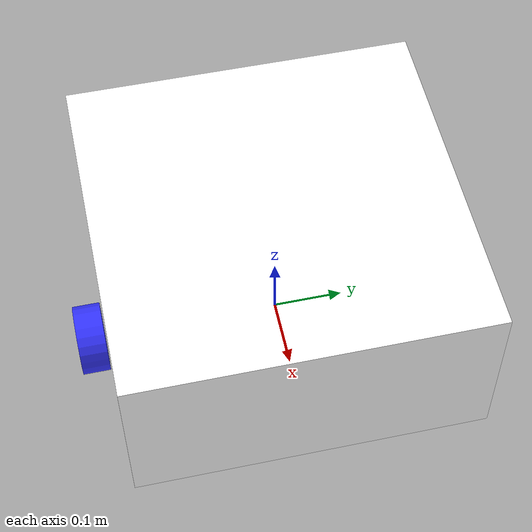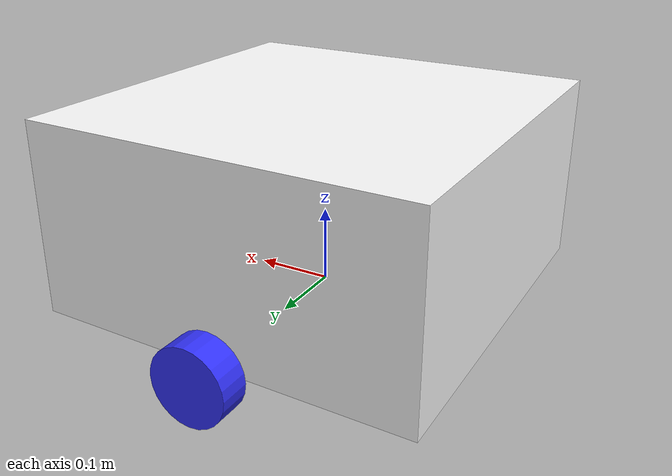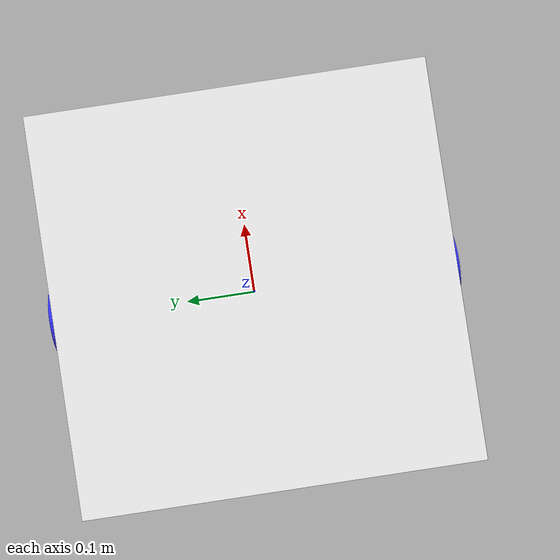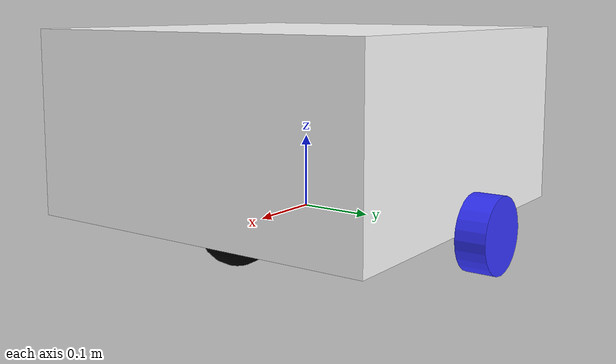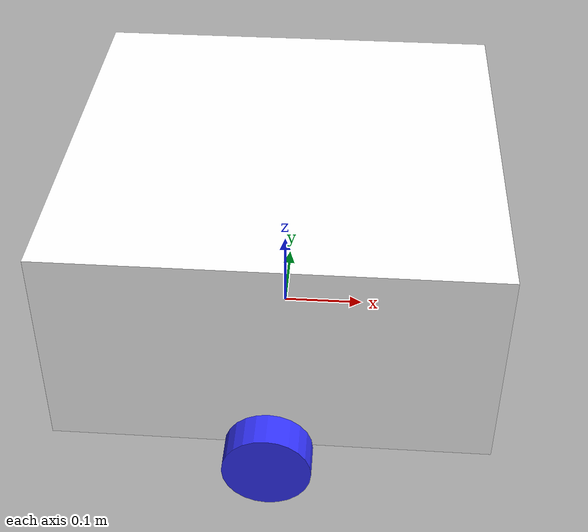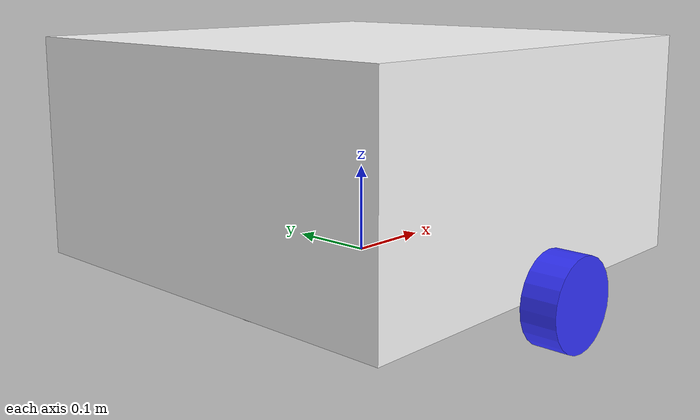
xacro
<?xml version="1.0"?>
<robot xmlns:xacro="http://www.ros.org/wiki/xacro">

    <material name="white">
        <color rgba="1 1 1 1" />
    </material>

    <material name="orange">
        <color rgba="1 0.3 0.1 1" />
    </material>

    <material name="blue">
        <color rgba="0.2 0.2 1 1" />
    </material>

    <material name="black">
        <color rgba="0 0 0 1" />
    </material>

    <material name="red">
        <color rgba="1 0.2 0.2 1" />
    </material>

    <!-- BASE LINK -->

    <link name="base_link">

    </link>

    <!-- CHASSIS -->

    <joint name="chassis" type="fixed">
        <parent link="base_link" />
        <child link="chassis" />
        <origin xyz="-0.25 0 0" />
    </joint>

    <link name="chassis">
        <visual>
            <origin xyz= "0.25 0 0.125" />
            <geometry>
                <box size="0.5 0.5 0.25" />
            </geometry>
            <material name="white" />
        </visual>
        <collision>
            <origin xyz= "0.25 0 0.125" />
            <geometry>
                <box size="0.5 0.5 0.25" />
            </geometry>
            <material name="white" />
        </collision>
        <inertial>
            <origin xyz="0.25 0 0.125"/>
            <mass value="10"/>
            <inertia ixx="0.26042" ixy="0" ixz="0" iyy="0.26042" iyz="0" izz="0.41667"/>
        </inertial>
    </link>

    <gazebo reference="chassis">
        <material>Gazebo/White</material>
    </gazebo>

    <!-- WHEEL LINK -->

    <joint name="left_wheel_joint" type="continuous">
        <parent link="base_link" />
        <child link="left_wheel" />
        <origin xyz="0 0.275 0" rpy="-${pi/2} 0 0" />
        <axis xyz= "0 0 1" />
    </joint>

    <link name="left_wheel">
        <visual>
            <geometry>
                <cylinder radius="0.05" length="0.04" />
            </geometry>
            <material name="blue" />
        </visual>
        <collision>
            <geometry>
                <cylinder radius="0.05" length="0.04" />
            </geometry>
            <material name="blue" />
        </collision>
        <inertial>
            <mass value="1.5"/>
            <inertia ixx="0.00114" ixy="0" ixz="0" iyy="0.00114" iyz="0" izz="0.00188"/>
        </inertial>
    </link>

    <gazebo reference="left_wheel">
        <material>Gazebo/Blue</material>
    </gazebo>

    <joint name="right_wheel_joint" type="continuous">
        <parent link="base_link" />
        <child link="right_wheel" />
        <origin xyz="0 -0.275 0" rpy="${pi/2} 0 0" />
        <axis xyz= "0 0 -1" />
    </joint>

    <link name="right_wheel">
        <visual>
            <geometry>
                <cylinder radius="0.05" length="0.04" />
            </geometry>
            <material name="blue" />
        </visual>
        <collision>
            <geometry>
                <cylinder radius="0.05" length="0.04" />
            </geometry>
            <material name="blue" />
        </collision>
        <inertial>
            <mass value="1.5"/>
            <inertia ixx="0.00114" ixy="0" ixz="0" iyy="0.00114" iyz="0" izz="0.00188"/>
        </inertial>
    </link>

    <gazebo reference="right_wheel">
        <material>Gazebo/Blue</material>
    </gazebo>

    <!-- CASTER WHEEL LINK -->

    <joint name="front_caster_wheel_joint" type="fixed">
        <parent link="chassis" />
        <child link="front_caster_wheel" />
        <origin xyz="0.1 0 0" />
    </joint>

    <link name="front_caster_wheel">
        <visual>
            <geometry>
                <sphere radius="0.05" />
            </geometry>
            <material name="black" />
        </visual>
        <collision>
            <geometry>
                <sphere radius="0.05" />
            </geometry>
            <material name="black" />
        </collision>
        <inertial>
            <mass value="1.5"/>
            <inertia ixx="0.15" ixy="0" ixz="0" iyy="0.15" iyz="0" izz="0.15"/>
        </inertial>
    </link>

    <gazebo reference="front_caster_wheel">
        <material>Gazebo/Black</material>
        <mu1>0.001</mu1>
        <mu2>0.001</mu2>
    </gazebo>

    <joint name="rear_caster_wheel_joint" type="fixed">
        <parent link="chassis" />
        <child link="rear_caster_wheel" />
        <origin xyz="0.4 0 0" />
    </joint>

    <link name="rear_caster_wheel">
        <visual>
            <geometry>
                <sphere radius="0.05" />
            </geometry>
            <material name="black" />
        </visual>
        <collision>
            <geometry>
                <sphere radius="0.05" />
            </geometry>
            <material name="black" />
        </collision>
        <inertial>
            <mass value="1.5"/>
            <inertia ixx="0.15" ixy="0" ixz="0" iyy="0.15" iyz="0" izz="0.15"/>
        </inertial>
    </link>

    <gazebo reference="rear_caster_wheel">
        <material>Gazebo/Black</material>
        <mu1>0.001</mu1>
        <mu2>0.001</mu2>
    </gazebo>

</robot>
